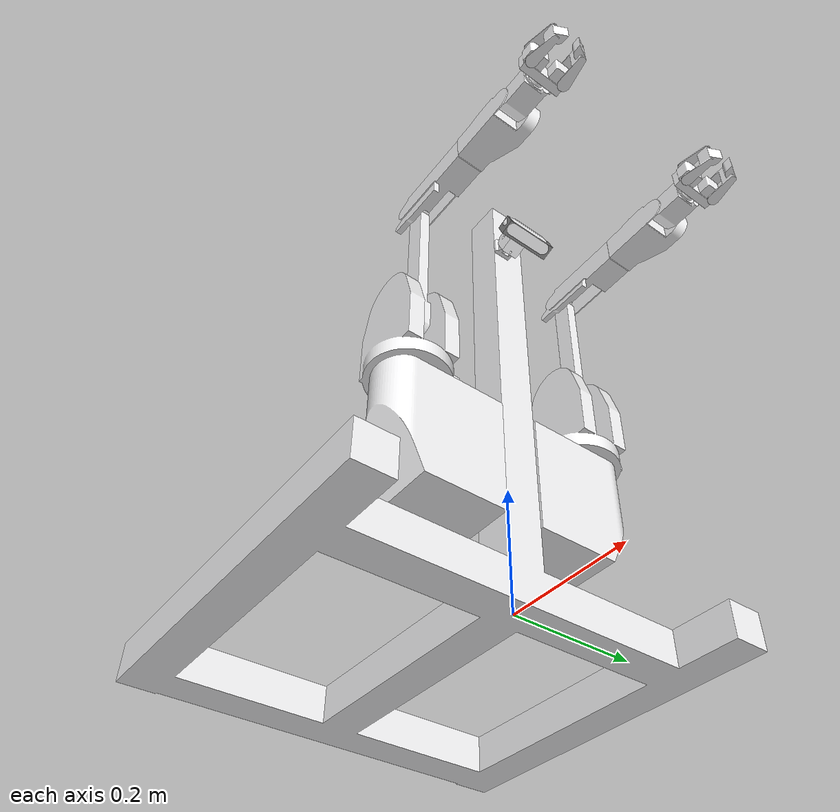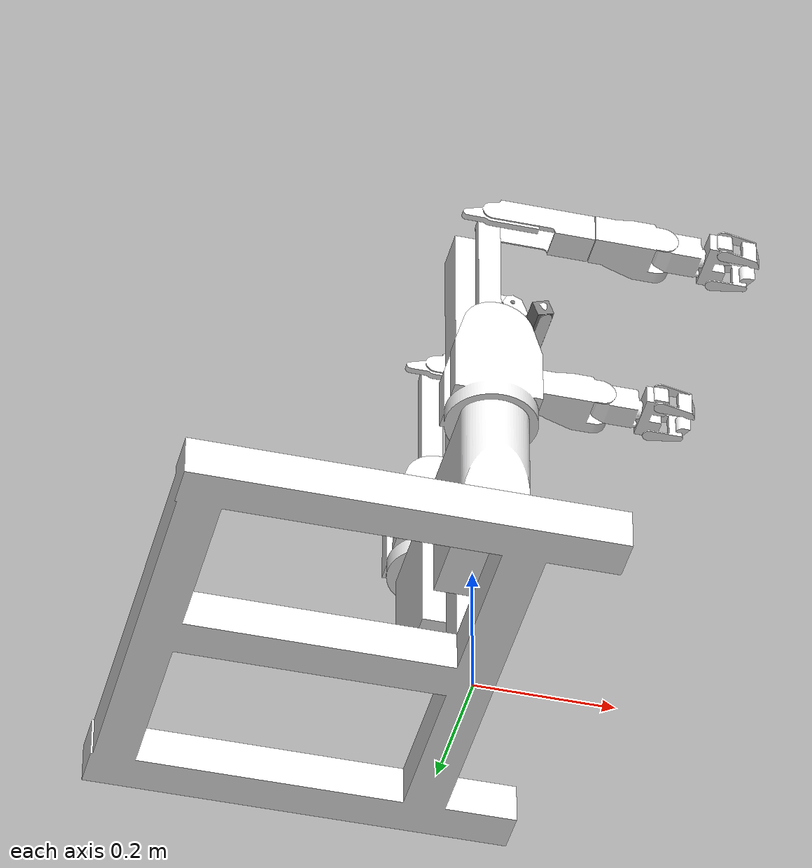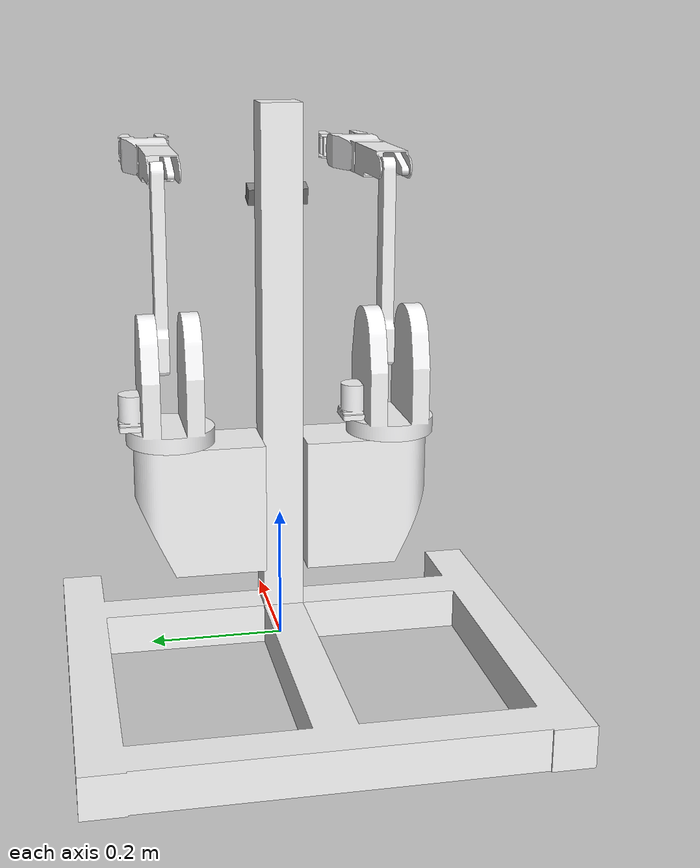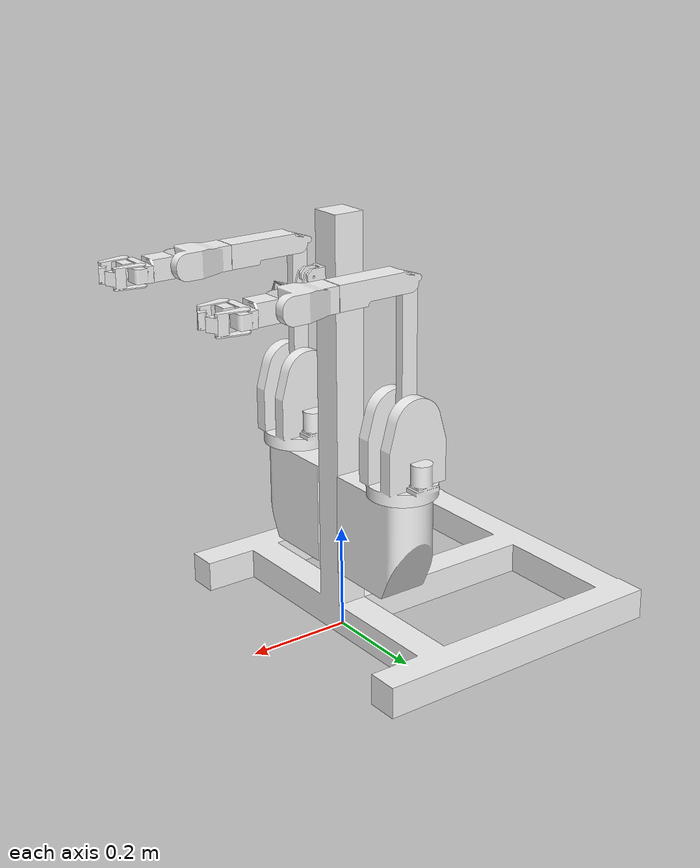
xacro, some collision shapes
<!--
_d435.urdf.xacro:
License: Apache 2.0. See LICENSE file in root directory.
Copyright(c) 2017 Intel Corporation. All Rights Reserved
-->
<?xml version="1.0" ?>
<robot name="kohaku_dualarm" xmlns:xacro="http://ros.org/wiki/xacro">

    <!-- import gazebo setting -->
    <xacro:include filename="$(find kohaku_description)/urdf/kohaku_dualarm.gazebo.xacro" />
    <!-- import materials -->
    <xacro:include filename="$(find kohaku_description)/urdf/materials.xacro" />
    <!-- import transmission -->
    <xacro:include filename="$(find kohaku_description)/urdf/kohaku_dualarm_sim.trans.xacro" />
    <!-- import tree -->
    <xacro:include filename="$(find kohaku_description)/urdf/kohaku_dualarm.mesh.xacro" />
    <!-- sensor -->
    <xacro:include filename="$(find kohaku_description)/urdf/kohaku_dualarm.sensors.xacro" />

</robot>

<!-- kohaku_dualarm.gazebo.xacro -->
<robot name="kohaku_dualarm" xmlns:xacro="http://www.ros.org/wiki/xacro" >

<xacro:property name="body_color" value="Gazebo/Silver" />

<gazebo>
  <plugin name="control" filename="libgazebo_ros_control.so"/>
</gazebo>
<gazebo reference="base_link">
  <material>${body_color}</material>
  <mu1>0.2</mu1>
  <mu2>0.2</mu2>
  <selfCollide>true</selfCollide>
  <gravity>true</gravity>
</gazebo>

<gazebo reference="left_upperarm_link_1">
  <material>${body_color}</material>
  <mu1>0.2</mu1>
  <mu2>0.2</mu2>
  <selfCollide>true</selfCollide>
</gazebo>

<gazebo reference="left_forearm_link_1">
  <material>${body_color}</material>
  <mu1>0.2</mu1>
  <mu2>0.2</mu2>
  <selfCollide>true</selfCollide>
</gazebo>

<gazebo reference="left_wrist_yaw_link_1">
  <material>${body_color}</material>
  <mu1>0.2</mu1>
  <mu2>0.2</mu2>
  <selfCollide>true</selfCollide>
</gazebo>

<gazebo reference="left_wrist_pitch_link_1">
  <material>${body_color}</material>
  <mu1>0.2</mu1>
  <mu2>0.2</mu2>
  <selfCollide>true</selfCollide>
</gazebo>

<gazebo reference="left_hand_palm_link_1">
  <material>${body_color}</material>
  <mu1>0.2</mu1>
  <mu2>0.2</mu2>
  <selfCollide>true</selfCollide>
</gazebo>

<gazebo reference="left_r_finger_link_1">
  <material>${body_color}</material>
  <mu1>0.2</mu1>
  <mu2>0.2</mu2>
  <selfCollide>true</selfCollide>
</gazebo>

<gazebo reference="left_l_finger_link_1">
  <material>${body_color}</material>
  <mu1>0.2</mu1>
  <mu2>0.2</mu2>
  <selfCollide>true</selfCollide>
</gazebo>

<gazebo reference="right_upperarm_link_1">
  <material>${body_color}</material>
  <mu1>0.2</mu1>
  <mu2>0.2</mu2>
  <selfCollide>true</selfCollide>
</gazebo>

<gazebo reference="right_forearm_link_1">
  <material>${body_color}</material>
  <mu1>0.2</mu1>
  <mu2>0.2</mu2>
  <selfCollide>true</selfCollide>
</gazebo>

<gazebo reference="right_wrist_yaw_link_1">
  <material>${body_color}</material>
  <mu1>0.2</mu1>
  <mu2>0.2</mu2>
  <selfCollide>true</selfCollide>
</gazebo>

<gazebo reference="right_wrist_pitch_link_1">
  <material>${body_color}</material>
  <mu1>0.2</mu1>
  <mu2>0.2</mu2>
  <selfCollide>true</selfCollide>
</gazebo>

<gazebo reference="right_hand_palm_link_1">
  <material>${body_color}</material>
  <mu1>0.2</mu1>
  <mu2>0.2</mu2>
  <selfCollide>true</selfCollide>
</gazebo>

<gazebo reference="right_r_finger_link_1">
  <material>${body_color}</material>
  <mu1>0.2</mu1>
  <mu2>0.2</mu2>
  <selfCollide>true</selfCollide>
</gazebo>

<gazebo reference="right_l_finger_link_1">
  <material>${body_color}</material>
  <mu1>0.2</mu1>
  <mu2>0.2</mu2>
  <selfCollide>true</selfCollide>
</gazebo>

<gazebo reference="camera_base_1">
  <material>${body_color}</material>
  <mu1>0.2</mu1>
  <mu2>0.2</mu2>
  <selfCollide>true</selfCollide>
</gazebo>

<gazebo reference="camera_link_1">
  <material>${body_color}</material>
  <mu1>0.2</mu1>
  <mu2>0.2</mu2>
  <selfCollide>true</selfCollide>
</gazebo>

<gazebo reference="left_shoulder_link_1">
  <material>${body_color}</material>
  <mu1>0.2</mu1>
  <mu2>0.2</mu2>
  <selfCollide>true</selfCollide>
</gazebo>

<gazebo reference="right_shoulder_link_1">
  <material>${body_color}</material>
  <mu1>0.2</mu1>
  <mu2>0.2</mu2>
  <selfCollide>true</selfCollide>
</gazebo>

<gazebo reference="left_base_frame_1">
  <material>${body_color}</material>
  <mu1>0.2</mu1>
  <mu2>0.2</mu2>
  <selfCollide>true</selfCollide>
</gazebo>

<gazebo reference="right_base_frame_1">
  <material>${body_color}</material>
  <mu1>0.2</mu1>
  <mu2>0.2</mu2>
  <selfCollide>true</selfCollide>
</gazebo>

</robot>

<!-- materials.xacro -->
<robot name="kohaku_dualarm" xmlns:xacro="http://www.ros.org/wiki/xacro" >

<material name="silver_default">
  <color rgba="0.700 0.700 0.700 1.000"/>
</material>
<material name="_">
  <color rgba="0.9607843137254902 0.9607843137254902 0.9647058823529412 1.0"/>
</material>

</robot>

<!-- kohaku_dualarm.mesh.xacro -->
<robot name="kohaku_dualarm" xmlns:xacro="http://www.ros.org/wiki/xacro">

<xacro:property name="camera_angle" value="1.23" />

<link name="world"/>
<joint name="world_to_base_link" type="fixed" >
  <parent link="world" />
  <child link="base_link" />
</joint>

<link name="base_link">
  <inertial>
    <origin xyz="-0.15079905348722558 0.002632253893124613 0.12091351070017117" rpy="0 0 0"/>
    <mass value="129.89853651459157"/>
    <inertia ixx="9.979542" iyy="9.36588" izz="9.520271" ixy="-0.046433" iyz="-0.02707" ixz="-1.764444"/>
  </inertial>
  <visual>
    <origin xyz="0 0 0" rpy="0 0 0"/>
    <geometry>
      <mesh filename="package://kohaku_description/meshes/base_link.stl" scale="0.001 0.001 0.001"/>
    </geometry>
    <material name="_"/>
  </visual>
  <collision>
    <origin xyz="0 0 0" rpy="0 0 0"/>
    <geometry>
      <mesh filename="package://kohaku_description/meshes/base_link.stl" scale="0.001 0.001 0.001"/>
    </geometry>
  </collision>
</link>

<link name="left_upperarm_link">
  <inertial>
    <origin xyz="5.075907070683193e-05 0.0055551687418621265 0.06093355009099832" rpy="0 0 0"/>
    <mass value="1.6464184320412805"/>
    <inertia ixx="0.012435" iyy="0.01254" izz="0.000862" ixy="2e-06" iyz="-0.000385" ixz="5e-06"/>
  </inertial>
  <visual>
    <origin xyz="0.015 -0.16498 -0.502019" rpy="0 0 0"/>
    <geometry>
      <mesh filename="package://kohaku_description/meshes/left_upperarm_link_1.stl" scale="0.001 0.001 0.001"/>
    </geometry>
    <material name="_"/>
  </visual>
  <collision>
    <origin xyz="0.015 -0.16498 -0.502019" rpy="0 0 0"/>
    <geometry>
      <mesh filename="package://kohaku_description/meshes/left_upperarm_link_1.stl" scale="0.001 0.001 0.001"/>
    </geometry>
  </collision>
</link>

<link name="left_forearm_link">
  <inertial>
    <origin xyz="-0.0028629714869261927 -0.0029849490325699057 0.0665229146241868" rpy="0 0 0"/>
    <mass value="0.5147558278242914"/>
    <inertia ixx="0.001435" iyy="0.001418" izz="0.000194" ixy="1e-06" iyz="-5.7e-05" ixz="-4.1e-05"/>
  </inertial>
  <visual>
    <origin xyz="0.015 -0.164945 -0.752019" rpy="0 0 0"/>
    <geometry>
      <mesh filename="package://kohaku_description/meshes/left_forearm_link_1.stl" scale="0.001 0.001 0.001"/>
    </geometry>
    <material name="_"/>
  </visual>
  <collision>
    <origin xyz="0.015 -0.164945 -0.752019" rpy="0 0 0"/>
    <geometry>
      <mesh filename="package://kohaku_description/meshes/left_forearm_link_1.stl" scale="0.001 0.001 0.001"/>
    </geometry>
  </collision>
</link>

<link name="left_wrist_yaw_link">
  <inertial>
    <origin xyz="-0.0012123899494678285 0.00799629493788756 0.05493382214308451" rpy="0 0 0"/>
    <mass value="1.0197481013710548"/>
    <inertia ixx="0.001319" iyy="0.001172" izz="0.000585" ixy="7e-06" iyz="-0.000192" ixz="2.4e-05"/>
  </inertial>
  <visual>
    <origin xyz="0.015 -0.164874 -0.902019" rpy="0 0 0"/>
    <geometry>
      <mesh filename="package://kohaku_description/meshes/left_wrist_yaw_link_1.stl" scale="0.001 0.001 0.001"/>
    </geometry>
    <material name="_"/>
  </visual>
  <collision>
    <origin xyz="0.015 -0.164874 -0.902019" rpy="0 0 0"/>
    <geometry>
      <mesh filename="package://kohaku_description/meshes/left_wrist_yaw_link_1.stl" scale="0.001 0.001 0.001"/>
    </geometry>
  </collision>
</link>

<link name="left_wrist_pitch_link">
  <inertial>
    <origin xyz="4.65267917359076e-05 0.0005212096653225973 0.03002034855665814" rpy="0 0 0"/>
    <mass value="0.3895986537799301"/>
    <inertia ixx="0.000199" iyy="0.000188" izz="0.000103" ixy="-0.0" iyz="-6e-06" ixz="1e-06"/>
  </inertial>
  <visual>
    <origin xyz="0.015 -0.16486 -1.002019" rpy="0 0 0"/>
    <geometry>
      <mesh filename="package://kohaku_description/meshes/left_wrist_pitch_link_1.stl" scale="0.001 0.001 0.001"/>
    </geometry>
    <material name="_"/>
  </visual>
  <collision>
    <origin xyz="0.015 -0.16486 -1.002019" rpy="0 0 0"/>
    <geometry>
      <mesh filename="package://kohaku_description/meshes/left_wrist_pitch_link_1.stl" scale="0.001 0.001 0.001"/>
    </geometry>
  </collision>
</link>

<link name="left_hand_palm_link">
  <inertial>
    <origin xyz="0.0002318570856491807 -6.828401333128231e-05 0.017667823933595006" rpy="0 0 0"/>
    <mass value="0.32135536491616284"/>
    <inertia ixx="0.000221" iyy="5.4e-05" izz="0.000213" ixy="-0.0" iyz="-0.0" ixz="-0.0"/>
  </inertial>
  <visual>
    <origin xyz="0.015 -0.164851 -1.067019" rpy="0 0 0"/>
    <geometry>
      <mesh filename="package://kohaku_description/meshes/left_hand_palm_link_1.stl" scale="0.001 0.001 0.001"/>
    </geometry>
    <material name="_"/>
  </visual>
  <collision>
    <origin xyz="0.015 -0.164851 -1.067019" rpy="0 0 0"/>
    <geometry>
      <mesh filename="package://kohaku_description/meshes/left_hand_palm_link_1.stl" scale="0.001 0.001 0.001"/>
    </geometry>
  </collision>
</link>

<link name="left_r_finger_link">
  <inertial>
    <origin xyz="0.00015745354838760627 0.006862307384075728 0.03618445014614924" rpy="0 0 0"/>
    <mass value="0.07719980680600205"/>
    <inertia ixx="2e-05" iyy="2.8e-05" izz="1.5e-05" ixy="0.0" iyz="-4e-06" ixz="0.0"/>
  </inertial>
  <visual>
    <origin xyz="0.015 -0.133848 -1.089074" rpy="0 0 0"/>
    <geometry>
      <mesh filename="package://kohaku_description/meshes/left_r_finger_link_1.stl" scale="0.001 0.001 0.001"/>
    </geometry>
    <material name="_"/>
  </visual>
  <collision>
    <origin xyz="0.015 -0.133848 -1.089074" rpy="0 0 0"/>
    <geometry>
      <mesh filename="package://kohaku_description/meshes/left_r_finger_link_1.stl" scale="0.001 0.001 0.001"/>
    </geometry>
  </collision>
</link>

<link name="left_l_finger_link">
  <inertial>
    <origin xyz="-0.00015745364544006435 -0.006872074383145355 0.03618219144765589" rpy="0 0 0"/>
    <mass value="0.07719980680600244"/>
    <inertia ixx="2e-05" iyy="2.8e-05" izz="1.5e-05" ixy="0.0" iyz="4e-06" ixz="-0.0"/>
  </inertial>
  <visual>
    <origin xyz="0.015 -0.195848 -1.089083" rpy="0 0 0"/>
    <geometry>
      <mesh filename="package://kohaku_description/meshes/left_l_finger_link_1.stl" scale="0.001 0.001 0.001"/>
    </geometry>
    <material name="_"/>
  </visual>
  <collision>
    <origin xyz="0.015 -0.195848 -1.089083" rpy="0 0 0"/>
    <geometry>
      <mesh filename="package://kohaku_description/meshes/left_l_finger_link_1.stl" scale="0.001 0.001 0.001"/>
    </geometry>
  </collision>
</link>

<link name="right_upperarm_link">
  <inertial>
    <origin xyz="6.28442313096618e-05 0.006835763049751115 0.07545195310129493" rpy="0 0 0"/>
    <mass value="1.3298060603996433"/>
    <inertia ixx="0.010625" iyy="0.010715" izz="0.000507" ixy="2e-06" iyz="-0.000257" ixz="6e-06"/>
  </inertial>
  <visual>
    <origin xyz="0.015 0.165 -0.502" rpy="0 0 0"/>
    <geometry>
      <mesh filename="package://kohaku_description/meshes/right_upperarm_link_1.stl" scale="0.001 0.001 0.001"/>
    </geometry>
    <material name="_"/>
  </visual>
  <collision>
    <origin xyz="0.015 0.165 -0.502" rpy="0 0 0"/>
    <geometry>
      <mesh filename="package://kohaku_description/meshes/right_upperarm_link_1.stl" scale="0.001 0.001 0.001"/>
    </geometry>
  </collision>
</link>

<link name="right_forearm_link">
  <inertial>
    <origin xyz="-0.002862922182678501 -0.002976875459199807 0.06652323644658864" rpy="0 0 0"/>
    <mass value="0.5147646926800391"/>
    <inertia ixx="0.001435" iyy="0.001418" izz="0.000194" ixy="1e-06" iyz="-5.7e-05" ixz="-4.1e-05"/>
  </inertial>
  <visual>
    <origin xyz="0.015 0.165 -0.752" rpy="0 0 0"/>
    <geometry>
      <mesh filename="package://kohaku_description/meshes/right_forearm_link_1.stl" scale="0.001 0.001 0.001"/>
    </geometry>
    <material name="_"/>
  </visual>
  <collision>
    <origin xyz="0.015 0.165 -0.752" rpy="0 0 0"/>
    <geometry>
      <mesh filename="package://kohaku_description/meshes/right_forearm_link_1.stl" scale="0.001 0.001 0.001"/>
    </geometry>
  </collision>
</link>

<link name="right_wrist_yaw_link">
  <inertial>
    <origin xyz="-0.0012077095485982584 0.008005720369017338 0.0550085391055799" rpy="0 0 0"/>
    <mass value="1.0237000713299513"/>
    <inertia ixx="0.001322" iyy="0.001173" izz="0.000586" ixy="7e-06" iyz="-0.000192" ixz="2.4e-05"/>
  </inertial>
  <visual>
    <origin xyz="0.015 0.16505 -0.902" rpy="0 0 0"/>
    <geometry>
      <mesh filename="package://kohaku_description/meshes/right_wrist_yaw_link_1.stl" scale="0.001 0.001 0.001"/>
    </geometry>
    <material name="_"/>
  </visual>
  <collision>
    <origin xyz="0.015 0.16505 -0.902" rpy="0 0 0"/>
    <geometry>
      <mesh filename="package://kohaku_description/meshes/right_wrist_yaw_link_1.stl" scale="0.001 0.001 0.001"/>
    </geometry>
  </collision>
</link>

<link name="right_wrist_pitch_link">
  <inertial>
    <origin xyz="4.661107241576458e-05 0.0005260238582204257 0.030027676943425563" rpy="0 0 0"/>
    <mass value="0.3888941704743227"/>
    <inertia ixx="0.000199" iyy="0.000188" izz="0.000103" ixy="-0.0" iyz="-6e-06" ixz="1e-06"/>
  </inertial>
  <visual>
    <origin xyz="0.015 0.16505 -1.002" rpy="0 0 0"/>
    <geometry>
      <mesh filename="package://kohaku_description/meshes/right_wrist_pitch_link_1.stl" scale="0.001 0.001 0.001"/>
    </geometry>
    <material name="_"/>
  </visual>
  <collision>
    <origin xyz="0.015 0.16505 -1.002" rpy="0 0 0"/>
    <geometry>
      <mesh filename="package://kohaku_description/meshes/right_wrist_pitch_link_1.stl" scale="0.001 0.001 0.001"/>
    </geometry>
  </collision>
</link>

<link name="right_hand_palm_link">
  <inertial>
    <origin xyz="-2.2188362258646066e-11 -6.708764863327943e-05 0.017600327592202314" rpy="0 0 0"/>
    <mass value="0.3164695600213004"/>
    <inertia ixx="0.000216" iyy="5.3e-05" izz="0.000207" ixy="-0.0" iyz="-0.0" ixz="0.0"/>
  </inertial>
  <visual>
    <origin xyz="0.015 0.16505 -1.067" rpy="0 0 0"/>
    <geometry>
      <mesh filename="package://kohaku_description/meshes/right_hand_palm_link_1.stl" scale="0.001 0.001 0.001"/>
    </geometry>
    <material name="_"/>
  </visual>
  <collision>
    <origin xyz="0.015 0.16505 -1.067" rpy="0 0 0"/>
    <geometry>
      <mesh filename="package://kohaku_description/meshes/right_hand_palm_link_1.stl" scale="0.001 0.001 0.001"/>
    </geometry>
  </collision>
</link>

<link name="right_r_finger_link">
  <inertial>
    <origin xyz="0.0001574535453947555 0.006867190642168924 0.03618311934404739" rpy="0 0 0"/>
    <mass value="0.07719980680600211"/>
    <inertia ixx="2e-05" iyy="2.8e-05" izz="1.5e-05" ixy="0.0" iyz="-4e-06" ixz="0.0"/>
  </inertial>
  <visual>
    <origin xyz="0.015 0.19605 -1.08906" rpy="0 0 0"/>
    <geometry>
      <mesh filename="package://kohaku_description/meshes/right_r_finger_link_1.stl" scale="0.001 0.001 0.001"/>
    </geometry>
    <material name="_"/>
  </visual>
  <collision>
    <origin xyz="0.015 0.19605 -1.08906" rpy="0 0 0"/>
    <geometry>
      <mesh filename="package://kohaku_description/meshes/right_r_finger_link_1.stl" scale="0.001 0.001 0.001"/>
    </geometry>
  </collision>
</link>

<link name="right_l_finger_link">
  <inertial>
    <origin xyz="-0.0001574536484330348 -0.006867190654270244 0.036183119343653924" rpy="0 0 0"/>
    <mass value="0.07719980680600211"/>
    <inertia ixx="2e-05" iyy="2.8e-05" izz="1.5e-05" ixy="0.0" iyz="4e-06" ixz="-0.0"/>
  </inertial>
  <visual>
    <origin xyz="0.015 0.13405 -1.08906" rpy="0 0 0"/>
    <geometry>
      <mesh filename="package://kohaku_description/meshes/right_l_finger_link_1.stl" scale="0.001 0.001 0.001"/>
    </geometry>
    <material name="_"/>
  </visual>
  <collision>
    <origin xyz="0.015 0.13405 -1.08906" rpy="0 0 0"/>
    <geometry>
      <mesh filename="package://kohaku_description/meshes/right_l_finger_link_1.stl" scale="0.001 0.001 0.001"/>
    </geometry>
  </collision>
</link>

<link name="camera_base">
  <inertial>
    <origin xyz="0.016950029688606393 -0.00716311606080537 0.0018584699632485657" rpy="0 0 0"/>
    <mass value="0.14882356320498133"/>
    <inertia ixx="5.6e-05" iyy="2.9e-05" izz="6e-05" ixy="9e-06" iyz="9e-06" ixz="-2e-06"/>
  </inertial>
  <visual>
    <origin xyz="-0.03 -0.015 -0.795" rpy="0 0 0"/>
    <geometry>
      <mesh filename="package://kohaku_description/meshes/camera_base_1.stl" scale="0.001 0.001 0.001"/>
    </geometry>
    <material name="_"/>
  </visual>
  <collision>
    <origin xyz="-0.03 -0.015 -0.795" rpy="0 0 0"/>
    <geometry>
      <mesh filename="package://kohaku_description/meshes/camera_base_1.stl" scale="0.001 0.001 0.001"/>
    </geometry>
  </collision>
</link>

<link name="camera_jig_link">
  <inertial>
    <origin xyz="0.03422834270251631 0.010320547163566337 0.022530793104373115" rpy="0 0 0"/>
    <mass value="0.6223531709069755"/>
    <inertia ixx="0.000405" iyy="0.000203" izz="0.00041" ixy="-3e-06" iyz="-3e-06" ixz="-6.7e-05"/>
  </inertial>
  <visual>
    <origin xyz="-0.055 -0.0045 -0.795" rpy="0 0 0"/>
    <geometry>
      <mesh filename="package://kohaku_description/meshes/camera_link_1.stl" scale="0.001 0.001 0.001"/>
    </geometry>
    <material name="_"/>
  </visual>
  <collision>
    <origin xyz="-0.055 -0.0045 -0.795" rpy="0 0 0"/>
    <geometry>
      <mesh filename="package://kohaku_description/meshes/camera_link_1.stl" scale="0.001 0.001 0.001"/>
    </geometry>
  </collision>
</link>

<link name="left_shoulder_link">
  <inertial>
    <origin xyz="-0.0002483716377100001 0.002599957397357383 0.07656293547299953" rpy="0 0 0"/>
    <mass value="4.599230696027372"/>
    <inertia ixx="0.018029" iyy="0.017921" izz="0.01062" ixy="3.5e-05" iyz="0.000417" ixz="2.8e-05"/>
  </inertial>
  <visual>
    <origin xyz="0.015 -0.165 -0.360019" rpy="0 0 0"/>
    <geometry>
      <mesh filename="package://kohaku_description/meshes/left_shoulder_link_1.stl" scale="0.001 0.001 0.001"/>
    </geometry>
    <material name="_"/>
  </visual>
  <collision>
    <origin xyz="0.015 -0.165 -0.360019" rpy="0 0 0"/>
    <geometry>
      <mesh filename="package://kohaku_description/meshes/left_shoulder_link_1.stl" scale="0.001 0.001 0.001"/>
    </geometry>
  </collision>
</link>

<link name="right_shoulder_link">
  <inertial>
    <origin xyz="-0.00024954454442560267 0.0026120260106482773 0.07656295525588974" rpy="0 0 0"/>
    <mass value="4.5990809553104635"/>
    <inertia ixx="0.018029" iyy="0.017921" izz="0.010619" ixy="3.5e-05" iyz="0.000416" ixz="2.8e-05"/>
  </inertial>
  <visual>
    <origin xyz="0.015 0.165 -0.36" rpy="0 0 0"/>
    <geometry>
      <mesh filename="package://kohaku_description/meshes/right_shoulder_link_1.stl" scale="0.001 0.001 0.001"/>
    </geometry>
    <material name="_"/>
  </visual>
  <collision>
    <origin xyz="0.015 0.165 -0.36" rpy="0 0 0"/>
    <geometry>
      <mesh filename="package://kohaku_description/meshes/right_shoulder_link_1.stl" scale="0.001 0.001 0.001"/>
    </geometry>
  </collision>
</link>

<link name="left_base_frame">
  <inertial>
    <origin xyz="-0.048104095750049355 0.08571557516681824 -0.09306512049076127" rpy="0 0 0"/>
    <mass value="25.99551418429674"/>
    <inertia ixx="0.146903" iyy="0.101347" izz="0.086479" ixy="-9.9e-05" iyz="-0.009456" ixz="-8.9e-05"/>
  </inertial>
  <visual>
    <origin xyz="-0.033 -0.031 -0.36" rpy="0 0 0"/>
    <geometry>
      <mesh filename="package://kohaku_description/meshes/left_base_frame_1.stl" scale="0.001 0.001 0.001"/>
    </geometry>
    <material name="_"/>
  </visual>
  <collision>
    <origin xyz="-0.033 -0.031 -0.36" rpy="0 0 0"/>
    <geometry>
      <mesh filename="package://kohaku_description/meshes/left_base_frame_1.stl" scale="0.001 0.001 0.001"/>
    </geometry>
  </collision>
</link>

<link name="right_base_frame">
  <inertial>
    <origin xyz="-0.047895235127222845 -0.08570427691041646 -0.09307497415651689" rpy="0 0 0"/>
    <mass value="25.99675882675514"/>
    <inertia ixx="0.146909" iyy="0.101349" izz="0.086487" ixy="-9.9e-05" iyz="0.00946" ixz="8.9e-05"/>
  </inertial>
  <visual>
    <origin xyz="-0.033 0.031 -0.36" rpy="0 0 0"/>
    <geometry>
      <mesh filename="package://kohaku_description/meshes/right_base_frame_1.stl" scale="0.001 0.001 0.001"/>
    </geometry>
    <material name="_"/>
  </visual>
  <collision>
    <origin xyz="-0.033 0.031 -0.36" rpy="0 0 0"/>
    <geometry>
      <mesh filename="package://kohaku_description/meshes/right_base_frame_1.stl" scale="0.001 0.001 0.001"/>
    </geometry>
  </collision>
</link>

<joint name="left_arm_fix" type="fixed">
  <origin xyz="0.033 0.031 0.326" rpy="0 0 0"/>
  <parent link="base_link"/>
  <child link="left_base_frame"/>
</joint>

<joint name="left_shoulder_yaw" type="revolute">
  <origin xyz="-0.048 0.134 1.9e-05" rpy="0 0 0"/>
  <parent link="left_base_frame"/>
  <child link="left_shoulder_link"/>
  <axis xyz="0.0 -0.00014 1.0"/>
  <limit upper="2.792527" lower="-0.872665" effort="100" velocity="100"/>
</joint>

<joint name="left_shoulder_pitch" type="revolute">
  <origin xyz="0.0 -2e-05 0.142" rpy="0 0 0"/>
  <parent link="left_shoulder_link"/>
  <child link="left_upperarm_link"/>
  <axis xyz="-0.0 1.0 0.00014"/>
  <limit upper="1.832" lower="-0.785" effort="100" velocity="100"/>
</joint>

<joint name="left_elbow_pitch" type="revolute">
  <origin xyz="0.0 -3.5e-05 0.25" rpy="0 0 0"/>
  <parent link="left_upperarm_link"/>
  <child link="left_forearm_link"/>
  <axis xyz="-0.0 1.0 0.00014"/>
  <limit upper="2.705" lower="0.436" effort="100" velocity="100"/>
</joint>

<joint name="left_wrist_yaw" type="revolute">
  <origin xyz="0.0 -7.1e-05 0.15" rpy="0 0 0"/>
  <parent link="left_forearm_link"/>
  <child link="left_wrist_yaw_link"/>
  <axis xyz="0.0 -0.00014 1.0"/>
  <limit upper="2.094" lower="-2.094" effort="100" velocity="100"/>
</joint>

<joint name="left_wrist_pitch" type="revolute">
  <origin xyz="0.0 -1.4e-05 0.1" rpy="0 0 0"/>
  <parent link="left_wrist_yaw_link"/>
  <child link="left_wrist_pitch_link"/>
  <axis xyz="-0.0 1.0 0.00014"/>
  <limit upper="1.047" lower="-1.047" effort="100" velocity="100"/>
</joint>

<joint name="left_hand_yaw" type="revolute">
  <origin xyz="0.0 -9e-06 0.065" rpy="0 0 0"/>
  <parent link="left_wrist_pitch_link"/>
  <child link="left_hand_palm_link"/>
  <axis xyz="-0.0 -0.00014 1.0"/>
  <limit upper="2.967" lower="-2.967" effort="100" velocity="100"/>
</joint>

<joint name="left_r_finger_joint" type="revolute">
  <origin xyz="0.0 -0.031003 0.022055" rpy="0 0 0"/>
  <parent link="left_hand_palm_link"/>
  <child link="left_r_finger_link"/>
  <axis xyz="1.0 0.0 0.0"/>
  <limit upper="1.57" lower="-0.198" effort="100" velocity="100"/>
</joint>

<joint name="left_l_finger_joint" type="revolute">
  <origin xyz="0.0 0.030997 0.022064" rpy="0 0 0"/>
  <parent link="left_hand_palm_link"/>
  <child link="left_l_finger_link"/>
  <axis xyz="-1.0 -0.0 -0.0"/>
  <limit upper="1.57" lower="-0.198" effort="100" velocity="100"/>
</joint>

<joint name="right_arm_fix" type="fixed">
  <origin xyz="0.033 -0.031 0.326" rpy="0 0 0"/>
  <parent link="base_link"/>
  <child link="right_base_frame"/>
</joint>

<joint name="right_shoulder_yaw" type="revolute">
  <origin xyz="-0.048 -0.134 0.0" rpy="0 0 0"/>
  <parent link="right_base_frame"/>
  <child link="right_shoulder_link"/>
  <axis xyz="0.0 -0.0 1.0"/>
  <limit upper="0.872" lower="-2.792" effort="100" velocity="100"/>
</joint>

<joint name="right_shoulder_pitch" type="revolute">
  <origin xyz="0.0 0.0 0.142" rpy="0 0 0"/>
  <parent link="right_shoulder_link"/>
  <child link="right_upperarm_link"/>
  <axis xyz="0.0 1.0 0.0"/>
  <limit upper="1.832" lower="-0.785" effort="100" velocity="100"/>
</joint>

<joint name="right_elbow_pitch" type="revolute">
  <origin xyz="0.0 0.0 0.25" rpy="0 0 0"/>
  <parent link="right_upperarm_link"/>
  <child link="right_forearm_link"/>
  <axis xyz="0.0 1.0 0.0"/>
  <limit upper="2.705" lower="0.436" effort="100" velocity="100"/>
</joint>

<joint name="right_wrist_yaw" type="revolute">
  <origin xyz="0.0 -5e-05 0.15" rpy="0 0 0"/>
  <parent link="right_forearm_link"/>
  <child link="right_wrist_yaw_link"/>
  <axis xyz="0.0 0.0 1.0"/>
  <limit upper="2.094" lower="-2.094" effort="100" velocity="100"/>
</joint>

<joint name="right_wrist_pitch" type="revolute">
  <origin xyz="0.0 0.0 0.1" rpy="0 0 0"/>
  <parent link="right_wrist_yaw_link"/>
  <child link="right_wrist_pitch_link"/>
  <axis xyz="-0.0 1.0 0.0"/>
  <limit upper="1.047" lower="-1.047" effort="100" velocity="100"/>
</joint>

<joint name="right_hand_yaw" type="revolute">
  <origin xyz="0.0 0.0 0.065" rpy="0 0 0"/>
  <parent link="right_wrist_pitch_link"/>
  <child link="right_hand_palm_link"/>
  <axis xyz="-0.0 0.0 1.0"/>
  <limit upper="2.967" lower="-2.967" effort="100" velocity="100"/>
</joint>

<joint name="right_r_finger_joint" type="revolute">
  <origin xyz="0.0 -0.031 0.02206" rpy="0 0 0"/>
  <parent link="right_hand_palm_link"/>
  <child link="right_r_finger_link"/>
  <axis xyz="1.0 0.0 0.0"/>
  <limit upper="1.57" lower="-0.198" effort="100" velocity="100"/>
</joint>

<joint name="right_l_finger_joint" type="revolute">
  <origin xyz="0.0 0.031 0.02206" rpy="0 0 0"/>
  <parent link="right_hand_palm_link"/>
  <child link="right_l_finger_link"/>
  <axis xyz="-1.0 -0.0 -0.0"/>
  <limit upper="1.57" lower="-0.198" effort="100" velocity="100"/>
</joint>

<joint name="camera_base_fix" type="fixed">
  <origin xyz="0.03 -0.015 0.7" rpy="0 0 0"/>
  <parent link="base_link"/>
  <child link="camera_base"/>
</joint>

<joint name="camera_link_jig_fix" type="fixed">
  <origin xyz="0.025 -0.0105 0.0" rpy="0 ${camera_angle} 0"/>
  <parent link="camera_base"/>
  <child link="camera_jig_link"/>
</joint>

</robot>

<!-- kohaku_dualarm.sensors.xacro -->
<robot name="kohaku_dualarm" xmlns:xacro="http://ros.org/wiki/xacro">
  <xacro:include filename="$(find kohaku_description)/urdf/_d435.urdf.xacro" />
  <xacro:sensor_d435 name="camera" topics_ns="camera" parent="camera_jig_link" publish_pointcloud="true">
    <origin xyz="0.039 0.012 0.013" rpy="0 0 0" />
  </xacro:sensor_d435>

</robot>

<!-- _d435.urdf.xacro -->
<robot name="sensor_d435" xmlns:xacro="http://ros.org/wiki/xacro">
  <!--File includes-->
  <xacro:include filename="$(find kohaku_description)/urdf/_d435.gazebo.xacro"/>

  <xacro:macro name="sensor_d435" params="name:=camera topics_ns:=camera parent *origin publish_pointcloud:=true">
    <xacro:property name="M_PI" value="3.1415926535897931" />

    <!-- The following values are approximate, and the camera node
     publishing TF values with actual calibrated camera extrinsic values -->
    <xacro:property name="d435_cam_depth_to_left_ir_offset" value="0.0"/>
    <xacro:property name="d435_cam_depth_to_right_ir_offset" value="-0.050"/>
    <xacro:property name="d435_cam_depth_to_color_offset" value="0.015"/>

    <!-- The following values model the aluminum peripherial case for the
    D435 camera, with the camera joint represented by the actual
    peripherial camera tripod mount -->
    <xacro:property name="d435_cam_width" value="0.090"/>
    <xacro:property name="d435_cam_height" value="0.025"/>
    <xacro:property name="d435_cam_depth" value="0.02505"/>
    <xacro:property name="d435_cam_mount_from_center_offset" value="0.0149"/>

    <!-- The following offset is relative the the physical D435 camera peripherial
    camera tripod mount -->
    <xacro:property name="d435_cam_depth_px" value="${d435_cam_mount_from_center_offset}"/>
    <xacro:property name="d435_cam_depth_py" value="0.0175"/>
    <xacro:property name="d435_cam_depth_pz" value="${d435_cam_height/2}"/>

    <material name="${name}_aluminum">
    <color rgba="0.5 0.5 0.5 1"/>
    </material>

    <!-- camera body, with origin at bottom screw mount -->
    <joint name="${name}_joint" type="fixed">
      <xacro:insert_block name="origin" />
      <parent link="${parent}"/>
      <child link="${name}_bottom_screw_frame" />
    </joint>
    <link name="${name}_bottom_screw_frame"/>

    <joint name="${name}_link_joint" type="fixed">
      <origin xyz="0 ${d435_cam_depth_py} ${d435_cam_depth_pz}" rpy="0 0 0"/>
      <parent link="${name}_bottom_screw_frame"/>
      <child link="${name}_link" />
    </joint>

    <link name="${name}_link">
      <visual>
      <origin xyz="${d435_cam_mount_from_center_offset} ${-d435_cam_depth_py} 0" rpy="${M_PI/2} 0 ${M_PI/2}"/>
        <geometry>
          <mesh filename="package://realsense2_description/meshes/d435.dae" />
        </geometry>
        <material name="${name}_aluminum"/>
      </visual>
      <collision>
        <origin xyz="0 ${-d435_cam_depth_py} 0" rpy="0 0 0"/>
        <geometry>
        <box size="${d435_cam_depth} ${d435_cam_width} ${d435_cam_height}"/>
        </geometry>
      </collision>
      <inertial>
        <!-- The following are not reliable values, and should not be used for modeling -->
        <mass value="0.564" />
        <origin xyz="0 0 0" />
        <inertia ixx="0.003881243" ixy="0.0" ixz="0.0" iyy="0.000498940" iyz="0.0" izz="0.003879257" />
      </inertial>
    </link>

    <!-- camera depth joints and links -->
    <joint name="${name}_depth_joint" type="fixed">
      <origin xyz="0 0 0" rpy="0 0 0"/>
      <parent link="${name}_link"/>
      <child link="${name}_depth_frame" />
    </joint>
    <link name="${name}_depth_frame"/>

    <joint name="${name}_depth_optical_joint" type="fixed">
      <origin xyz="0 0 0" rpy="${-M_PI/2} 0 ${-M_PI/2}" />
      <parent link="${name}_depth_frame" />
      <child link="${name}_depth_optical_frame" />
    </joint>
    <link name="${name}_depth_optical_frame"/>

    <!-- camera left IR joints and links -->
    <joint name="${name}_left_ir_joint" type="fixed">
      <origin xyz="0 ${d435_cam_depth_to_left_ir_offset} 0" rpy="0 0 0" />
      <parent link="${name}_depth_frame" />
      <child link="${name}_left_ir_frame" />
    </joint>
    <link name="${name}_left_ir_frame"/>

    <joint name="${name}_left_ir_optical_joint" type="fixed">
      <origin xyz="0 0 0" rpy="${-M_PI/2} 0 ${-M_PI/2}" />
      <parent link="${name}_left_ir_frame" />
      <child link="${name}_left_ir_optical_frame" />
    </joint>
    <link name="${name}_left_ir_optical_frame"/>

    <!-- camera right IR joints and links -->
    <joint name="${name}_right_ir_joint" type="fixed">
      <origin xyz="0 ${d435_cam_depth_to_right_ir_offset} 0" rpy="0 0 0" />
      <parent link="${name}_depth_frame" />
      <child link="${name}_right_ir_frame" />
    </joint>
    <link name="${name}_right_ir_frame"/>

    <joint name="${name}_right_ir_optical_joint" type="fixed">
      <origin xyz="0 0 0" rpy="${-M_PI/2} 0 ${-M_PI/2}" />
      <parent link="${name}_right_ir_frame" />
      <child link="${name}_right_ir_optical_frame" />
    </joint>
    <link name="${name}_right_ir_optical_frame"/>

    <!-- camera color joints and links -->
    <joint name="${name}_color_joint" type="fixed">
      <origin xyz="0 ${d435_cam_depth_to_color_offset} 0" rpy="0 0 0" />
      <parent link="${name}_depth_frame" />
      <child link="${name}_color_frame" />
    </joint>
    <link name="${name}_color_frame"/>

    <joint name="${name}_color_optical_joint" type="fixed">
      <origin xyz="0 0 0" rpy="${-M_PI/2} 0 ${-M_PI/2}" />
      <parent link="${name}_color_frame" />
      <child link="${name}_color_optical_frame" />
    </joint>
    <link name="${name}_color_optical_frame"/>

    <!-- Realsense Gazebo Plugin -->
    <xacro:gazebo_d435 camera_name="${name}" reference_link="${name}_link" topics_ns="${topics_ns}" depth_optical_frame="${name}_depth_optical_frame" color_optical_frame="${name}_color_optical_frame" infrared1_optical_frame="${name}_left_ir_optical_frame" infrared2_optical_frame="${name}_right_ir_optical_frame" publish_pointcloud="${publish_pointcloud}"/>

  </xacro:macro>
</robot>
